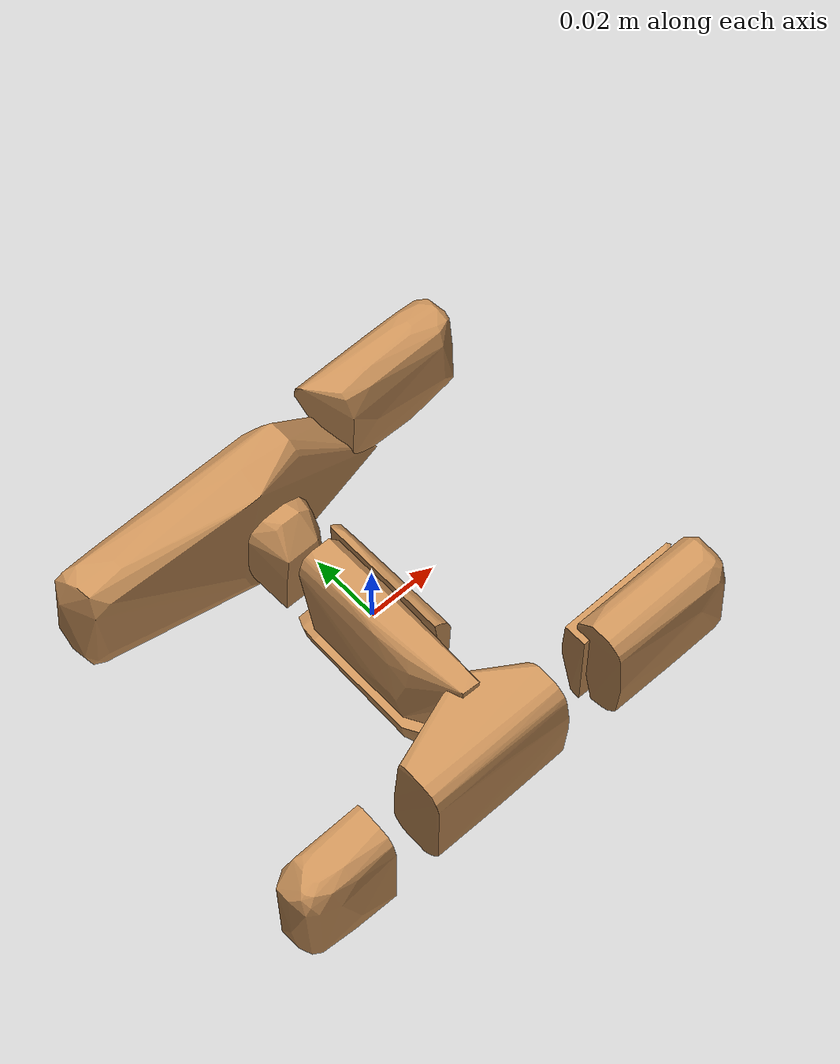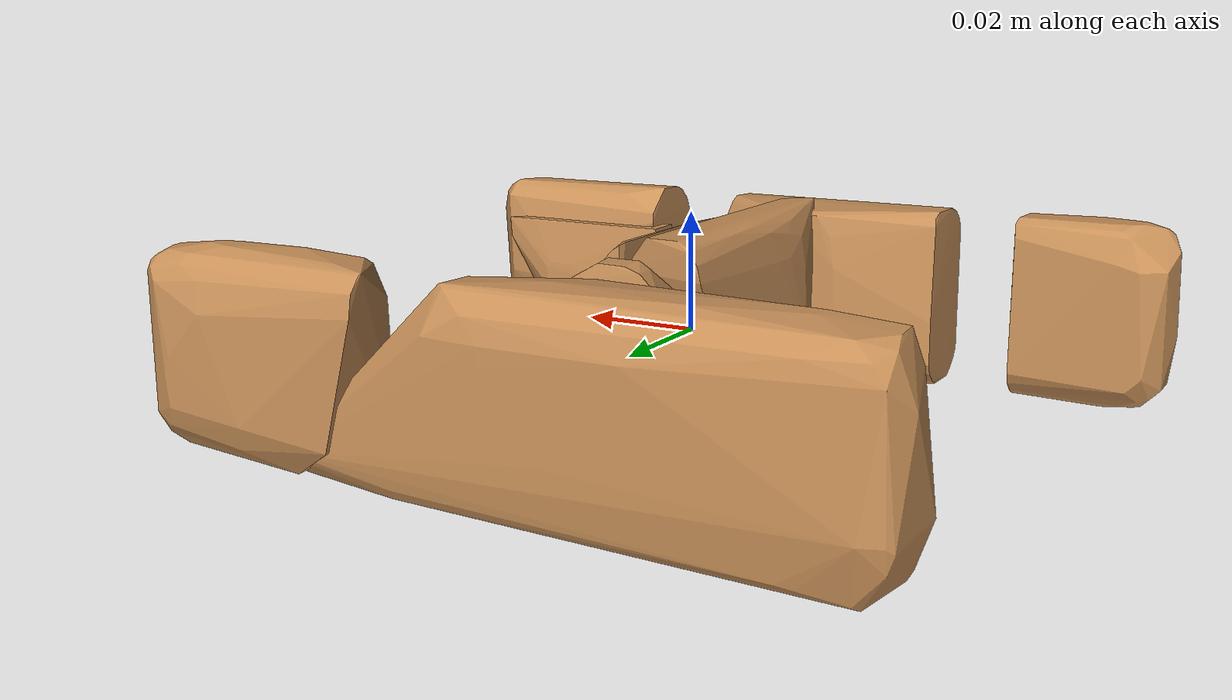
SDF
<?xml version='1.0' encoding='UTF-8'?>
<!-- This SDF was autogenerated by obj_to_drake_sdf.py -->
<sdf version="1.7">
  <model name="H_shape_video">
    <link name="H_shape_video">
      <inertial>
        <pose>0 0 0 0 0 0</pose>
        <mass>0.05</mass>
        <inertia>
          <ixx>0.00010746277</ixx>
          <iyy>8.6104213e-05</iyy>
          <izz>0.00017730515</izz>
          <ixy>7.0937208e-07</ixy>
          <ixz>-5.7532181e-07</ixz>
          <iyz>-8.482249e-07</iyz>
        </inertia>
      </inertial>
      <visual name="convex_0">
        <pose>0 0 0 0 0 0</pose>
        <geometry>
          <mesh>
            <uri>H_shape_video_convex_0.obj</uri>
          </mesh>
        </geometry>
        <material>
          <diffuse>0.7843137254901961 0.5647058823529412 0.34509803921568627 1</diffuse>
        </material>
      </visual>
      <collision name="convex_0_volume">
        <pose>0 0 0 0 0 0</pose>
        <geometry>
          <mesh>
            <uri>H_shape_video_convex_0.obj</uri>
          </mesh>
        </geometry>
        <drake:proximity_properties xmlns:drake="uri:drake">
          <drake:compliant_hydroelastic/>
          <drake:hydroelastic_modulus> 3.0e7 </drake:hydroelastic_modulus>
          <drake:mesh_resolution_hint> 0.02 </drake:mesh_resolution_hint>
          <drake:hunt_crossley_dissipation>10</drake:hunt_crossley_dissipation>
          <drake:mu_dynamic>0.3</drake:mu_dynamic>
        </drake:proximity_properties>
      </collision>
      <visual name="convex_1">
        <pose>0 0 0 0 0 0</pose>
        <geometry>
          <mesh>
            <uri>H_shape_video_convex_1.obj</uri>
          </mesh>
        </geometry>
        <material>
          <diffuse>0.7843137254901961 0.5647058823529412 0.34509803921568627 1</diffuse>
        </material>
      </visual>
      <collision name="convex_1_volume">
        <pose>0 0 0 0 0 0</pose>
        <geometry>
          <mesh>
            <uri>H_shape_video_convex_1.obj</uri>
          </mesh>
        </geometry>
        <drake:proximity_properties xmlns:drake="uri:drake">
          <drake:compliant_hydroelastic/>
          <drake:hydroelastic_modulus> 3.0e7 </drake:hydroelastic_modulus>
          <drake:mesh_resolution_hint> 0.02 </drake:mesh_resolution_hint>
          <drake:hunt_crossley_dissipation>10</drake:hunt_crossley_dissipation>
          <drake:mu_dynamic>0.3</drake:mu_dynamic>
        </drake:proximity_properties>
      </collision>
      <visual name="convex_2">
        <pose>0 0 0 0 0 0</pose>
        <geometry>
          <mesh>
            <uri>H_shape_video_convex_2.obj</uri>
          </mesh>
        </geometry>
        <material>
          <diffuse>0.7843137254901961 0.5647058823529412 0.34509803921568627 1</diffuse>
        </material>
      </visual>
      <collision name="convex_2_volume">
        <pose>0 0 0 0 0 0</pose>
        <geometry>
          <mesh>
            <uri>H_shape_video_convex_2.obj</uri>
          </mesh>
        </geometry>
        <drake:proximity_properties xmlns:drake="uri:drake">
          <drake:compliant_hydroelastic/>
          <drake:hydroelastic_modulus> 3.0e7 </drake:hydroelastic_modulus>
          <drake:mesh_resolution_hint> 0.02 </drake:mesh_resolution_hint>
          <drake:hunt_crossley_dissipation>10</drake:hunt_crossley_dissipation>
          <drake:mu_dynamic>0.3</drake:mu_dynamic>
        </drake:proximity_properties>
      </collision>
      <visual name="convex_3">
        <pose>0 0 0 0 0 0</pose>
        <geometry>
          <mesh>
            <uri>H_shape_video_convex_3.obj</uri>
          </mesh>
        </geometry>
        <material>
          <diffuse>0.7843137254901961 0.5647058823529412 0.34509803921568627 1</diffuse>
        </material>
      </visual>
      <collision name="convex_3_volume">
        <pose>0 0 0 0 0 0</pose>
        <geometry>
          <mesh>
            <uri>H_shape_video_convex_3.obj</uri>
          </mesh>
        </geometry>
        <drake:proximity_properties xmlns:drake="uri:drake">
          <drake:compliant_hydroelastic/>
          <drake:hydroelastic_modulus> 3.0e7 </drake:hydroelastic_modulus>
          <drake:mesh_resolution_hint> 0.02 </drake:mesh_resolution_hint>
          <drake:hunt_crossley_dissipation>10</drake:hunt_crossley_dissipation>
          <drake:mu_dynamic>0.3</drake:mu_dynamic>
        </drake:proximity_properties>
      </collision>
      <visual name="convex_4">
        <pose>0 0 0 0 0 0</pose>
        <geometry>
          <mesh>
            <uri>H_shape_video_convex_4.obj</uri>
          </mesh>
        </geometry>
        <material>
          <diffuse>0.7843137254901961 0.5647058823529412 0.34509803921568627 1</diffuse>
        </material>
      </visual>
      <collision name="convex_4_volume">
        <pose>0 0 0 0 0 0</pose>
        <geometry>
          <mesh>
            <uri>H_shape_video_convex_4.obj</uri>
          </mesh>
        </geometry>
        <drake:proximity_properties xmlns:drake="uri:drake">
          <drake:compliant_hydroelastic/>
          <drake:hydroelastic_modulus> 3.0e7 </drake:hydroelastic_modulus>
          <drake:mesh_resolution_hint> 0.02 </drake:mesh_resolution_hint>
          <drake:hunt_crossley_dissipation>10</drake:hunt_crossley_dissipation>
          <drake:mu_dynamic>0.3</drake:mu_dynamic>
        </drake:proximity_properties>
      </collision>
      <visual name="convex_5">
        <pose>0 0 0 0 0 0</pose>
        <geometry>
          <mesh>
            <uri>H_shape_video_convex_5.obj</uri>
          </mesh>
        </geometry>
        <material>
          <diffuse>0.7843137254901961 0.5647058823529412 0.34509803921568627 1</diffuse>
        </material>
      </visual>
      <collision name="convex_5_volume">
        <pose>0 0 0 0 0 0</pose>
        <geometry>
          <mesh>
            <uri>H_shape_video_convex_5.obj</uri>
          </mesh>
        </geometry>
        <drake:proximity_properties xmlns:drake="uri:drake">
          <drake:compliant_hydroelastic/>
          <drake:hydroelastic_modulus> 3.0e7 </drake:hydroelastic_modulus>
          <drake:mesh_resolution_hint> 0.02 </drake:mesh_resolution_hint>
          <drake:hunt_crossley_dissipation>10</drake:hunt_crossley_dissipation>
          <drake:mu_dynamic>0.3</drake:mu_dynamic>
        </drake:proximity_properties>
      </collision>
      <visual name="convex_6">
        <pose>0 0 0 0 0 0</pose>
        <geometry>
          <mesh>
            <uri>H_shape_video_convex_6.obj</uri>
          </mesh>
        </geometry>
        <material>
          <diffuse>0.7843137254901961 0.5647058823529412 0.34509803921568627 1</diffuse>
        </material>
      </visual>
      <collision name="convex_6_volume">
        <pose>0 0 0 0 0 0</pose>
        <geometry>
          <mesh>
            <uri>H_shape_video_convex_6.obj</uri>
          </mesh>
        </geometry>
        <drake:proximity_properties xmlns:drake="uri:drake">
          <drake:compliant_hydroelastic/>
          <drake:hydroelastic_modulus> 3.0e7 </drake:hydroelastic_modulus>
          <drake:mesh_resolution_hint> 0.02 </drake:mesh_resolution_hint>
          <drake:hunt_crossley_dissipation>10</drake:hunt_crossley_dissipation>
          <drake:mu_dynamic>0.3</drake:mu_dynamic>
        </drake:proximity_properties>
      </collision>
      <visual name="convex_7">
        <pose>0 0 0 0 0 0</pose>
        <geometry>
          <mesh>
            <uri>H_shape_video_convex_7.obj</uri>
          </mesh>
        </geometry>
        <material>
          <diffuse>0.7843137254901961 0.5647058823529412 0.34509803921568627 1</diffuse>
        </material>
      </visual>
      <collision name="convex_7_volume">
        <pose>0 0 0 0 0 0</pose>
        <geometry>
          <mesh>
            <uri>H_shape_video_convex_7.obj</uri>
          </mesh>
        </geometry>
        <drake:proximity_properties xmlns:drake="uri:drake">
          <drake:compliant_hydroelastic/>
          <drake:hydroelastic_modulus> 3.0e7 </drake:hydroelastic_modulus>
          <drake:mesh_resolution_hint> 0.02 </drake:mesh_resolution_hint>
          <drake:hunt_crossley_dissipation>10</drake:hunt_crossley_dissipation>
          <drake:mu_dynamic>0.3</drake:mu_dynamic>
        </drake:proximity_properties>
      </collision>
      <visual name="convex_8">
        <pose>0 0 0 0 0 0</pose>
        <geometry>
          <mesh>
            <uri>H_shape_video_convex_8.obj</uri>
          </mesh>
        </geometry>
        <material>
          <diffuse>0.7843137254901961 0.5647058823529412 0.34509803921568627 1</diffuse>
        </material>
      </visual>
      <collision name="convex_8_volume">
        <pose>0 0 0 0 0 0</pose>
        <geometry>
          <mesh>
            <uri>H_shape_video_convex_8.obj</uri>
          </mesh>
        </geometry>
        <drake:proximity_properties xmlns:drake="uri:drake">
          <drake:compliant_hydroelastic/>
          <drake:hydroelastic_modulus> 3.0e7 </drake:hydroelastic_modulus>
          <drake:mesh_resolution_hint> 0.02 </drake:mesh_resolution_hint>
          <drake:hunt_crossley_dissipation>10</drake:hunt_crossley_dissipation>
          <drake:mu_dynamic>0.3</drake:mu_dynamic>
        </drake:proximity_properties>
      </collision>
      <visual name="convex_9">
        <pose>0 0 0 0 0 0</pose>
        <geometry>
          <mesh>
            <uri>H_shape_video_convex_9.obj</uri>
          </mesh>
        </geometry>
        <material>
          <diffuse>0.7843137254901961 0.5647058823529412 0.34509803921568627 1</diffuse>
        </material>
      </visual>
      <collision name="convex_9_volume">
        <pose>0 0 0 0 0 0</pose>
        <geometry>
          <mesh>
            <uri>H_shape_video_convex_9.obj</uri>
          </mesh>
        </geometry>
        <drake:proximity_properties xmlns:drake="uri:drake">
          <drake:compliant_hydroelastic/>
          <drake:hydroelastic_modulus> 3.0e7 </drake:hydroelastic_modulus>
          <drake:mesh_resolution_hint> 0.02 </drake:mesh_resolution_hint>
          <drake:hunt_crossley_dissipation>10</drake:hunt_crossley_dissipation>
          <drake:mu_dynamic>0.3</drake:mu_dynamic>
        </drake:proximity_properties>
      </collision>
    </link>
  </model>
</sdf>
